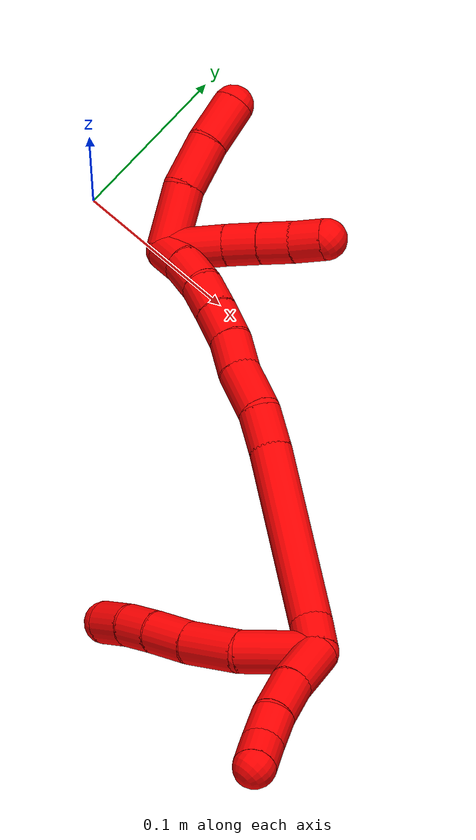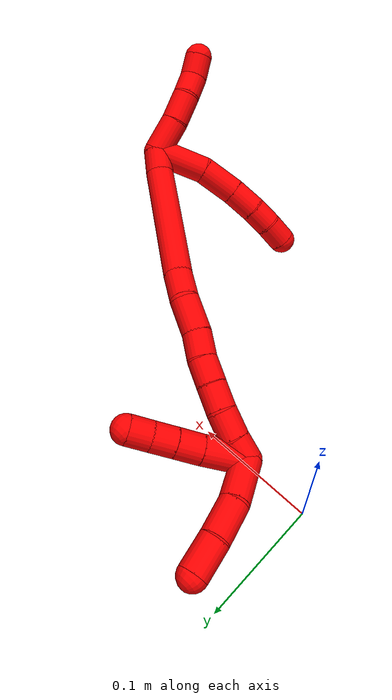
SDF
<sdf version="1.7">
 <world name="default">
  <model name="2">
   <static>0</static>
   <link name="2">
    <collision name="collision-cylinder-e_1_2_8">
     <pose>-0.01608 0.012185 0.011807 -0.801164 -0.758554 0.334425</pose>
     <geometry><cylinder><radius>0.0125</radius><length>0.046752</length></cylinder></geometry>
     <surface>
      <friction><ode><mu>1.16</mu><mu2>1.16</mu2><slip1>0</slip1><slip2>0</slip2></ode></friction>
      <contact><ode><kp>1e+06</kp><kd>1</kd><max_vel>0</max_vel><min_depth>0.001</min_depth></ode></contact>
     </surface>
    </collision>
    <visual name="visual-cylinder-e_1_2_8">
     <pose>-0.01608 0.012185 0.011807 -0.801164 -0.758554 0.334425</pose>
     <geometry><cylinder><radius>0.0125</radius><length>0.046752</length></cylinder></geometry>
     <material><ambient>1 0 0 1</ambient></material>
    </visual>
    <collision name="collision-cylinder-e_2_8_9">
     <pose>-0.046254 0.033023 0.028791 -1.03158 -0.949844 0.567336</pose>
     <geometry><cylinder><radius>0.0125</radius><length>0.03466</length></cylinder></geometry>
     <surface>
      <friction><ode><mu>1.16</mu><mu2>1.16</mu2><slip1>0</slip1><slip2>0</slip2></ode></friction>
      <contact><ode><kp>1e+06</kp><kd>1</kd><max_vel>0</max_vel><min_depth>0.001</min_depth></ode></contact>
     </surface>
    </collision>
    <visual name="visual-cylinder-e_2_8_9">
     <pose>-0.046254 0.033023 0.028791 -1.03158 -0.949844 0.567336</pose>
     <geometry><cylinder><radius>0.0125</radius><length>0.03466</length></cylinder></geometry>
     <material><ambient>1 0 0 1</ambient></material>
    </visual>
    <collision name="collision-cylinder-e_3_9_10">
     <pose>-0.071135 0.048456 0.036493 -1.21434 -0.979833 0.709601</pose>
     <geometry><cylinder><radius>0.0125</radius><length>0.025976</length></cylinder></geometry>
     <surface>
      <friction><ode><mu>1.16</mu><mu2>1.16</mu2><slip1>0</slip1><slip2>0</slip2></ode></friction>
      <contact><ode><kp>1e+06</kp><kd>1</kd><max_vel>0</max_vel><min_depth>0.001</min_depth></ode></contact>
     </surface>
    </collision>
    <visual name="visual-cylinder-e_3_9_10">
     <pose>-0.071135 0.048456 0.036493 -1.21434 -0.979833 0.709601</pose>
     <geometry><cylinder><radius>0.0125</radius><length>0.025976</length></cylinder></geometry>
     <material><ambient>1 0 0 1</ambient></material>
    </visual>
    <collision name="collision-cylinder-e_4_10_11">
     <pose>-0.091135 0.059765 0.040853 -1.18573 -1.08338 0.770295</pose>
     <geometry><cylinder><radius>0.0125</radius><length>0.020858</length></cylinder></geometry>
     <surface>
      <friction><ode><mu>1.16</mu><mu2>1.16</mu2><slip1>0</slip1><slip2>0</slip2></ode></friction>
      <contact><ode><kp>1e+06</kp><kd>1</kd><max_vel>0</max_vel><min_depth>0.001</min_depth></ode></contact>
     </surface>
    </collision>
    <visual name="visual-cylinder-e_4_10_11">
     <pose>-0.091135 0.059765 0.040853 -1.18573 -1.08338 0.770295</pose>
     <geometry><cylinder><radius>0.0125</radius><length>0.020858</length></cylinder></geometry>
     <material><ambient>1 0 0 1</ambient></material>
    </visual>
    <collision name="collision-cylinder-e_5_11_6">
     <pose>-0.110528 0.067506 0.044775 -0.995031 -1.21064 0.71894</pose>
     <geometry><cylinder><radius>0.0125</radius><length>0.021754</length></cylinder></geometry>
     <surface>
      <friction><ode><mu>1.16</mu><mu2>1.16</mu2><slip1>0</slip1><slip2>0</slip2></ode></friction>
      <contact><ode><kp>1e+06</kp><kd>1</kd><max_vel>0</max_vel><min_depth>0.001</min_depth></ode></contact>
     </surface>
    </collision>
    <visual name="visual-cylinder-e_5_11_6">
     <pose>-0.110528 0.067506 0.044775 -0.995031 -1.21064 0.71894</pose>
     <geometry><cylinder><radius>0.0125</radius><length>0.021754</length></cylinder></geometry>
     <material><ambient>1 0 0 1</ambient></material>
    </visual>
    <collision name="collision-cylinder-e_1_2_12">
     <pose>0.00761 0.001636 0.013966 -0.116608 0.496032 -0.02956</pose>
     <geometry><cylinder><radius>0.0125</radius><length>0.031977</length></cylinder></geometry>
     <surface>
      <friction><ode><mu>1.16</mu><mu2>1.16</mu2><slip1>0</slip1><slip2>0</slip2></ode></friction>
      <contact><ode><kp>1e+06</kp><kd>1</kd><max_vel>0</max_vel><min_depth>0.001</min_depth></ode></contact>
     </surface>
    </collision>
    <visual name="visual-cylinder-e_1_2_12">
     <pose>0.00761 0.001636 0.013966 -0.116608 0.496032 -0.02956</pose>
     <geometry><cylinder><radius>0.0125</radius><length>0.031977</length></cylinder></geometry>
     <material><ambient>1 0 0 1</ambient></material>
    </visual>
    <collision name="collision-cylinder-e_2_12_13">
     <pose>0.02225 0.003029 0.039528 0.020981 0.544915 0.005862</pose>
     <geometry><cylinder><radius>0.0125</radius><length>0.027127</length></cylinder></geometry>
     <surface>
      <friction><ode><mu>1.16</mu><mu2>1.16</mu2><slip1>0</slip1><slip2>0</slip2></ode></friction>
      <contact><ode><kp>1e+06</kp><kd>1</kd><max_vel>0</max_vel><min_depth>0.001</min_depth></ode></contact>
     </surface>
    </collision>
    <visual name="visual-cylinder-e_2_12_13">
     <pose>0.02225 0.003029 0.039528 0.020981 0.544915 0.005862</pose>
     <geometry><cylinder><radius>0.0125</radius><length>0.027127</length></cylinder></geometry>
     <material><ambient>1 0 0 1</ambient></material>
    </visual>
    <collision name="collision-cylinder-e_3_13_14">
     <pose>0.033782 0.000893 0.060162 0.206359 0.453641 0.047787</pose>
     <geometry><cylinder><radius>0.0125</radius><length>0.020545</length></cylinder></geometry>
     <surface>
      <friction><ode><mu>1.16</mu><mu2>1.16</mu2><slip1>0</slip1><slip2>0</slip2></ode></friction>
      <contact><ode><kp>1e+06</kp><kd>1</kd><max_vel>0</max_vel><min_depth>0.001</min_depth></ode></contact>
     </surface>
    </collision>
    <visual name="visual-cylinder-e_3_13_14">
     <pose>0.033782 0.000893 0.060162 0.206359 0.453641 0.047787</pose>
     <geometry><cylinder><radius>0.0125</radius><length>0.020545</length></cylinder></geometry>
     <material><ambient>1 0 0 1</ambient></material>
    </visual>
    <collision name="collision-cylinder-e_4_14_5">
     <pose>0.044939 -0.001758 0.07686 0.098756 0.71295 0.036801</pose>
     <geometry><cylinder><radius>0.0125</radius><length>0.020351</length></cylinder></geometry>
     <surface>
      <friction><ode><mu>1.16</mu><mu2>1.16</mu2><slip1>0</slip1><slip2>0</slip2></ode></friction>
      <contact><ode><kp>1e+06</kp><kd>1</kd><max_vel>0</max_vel><min_depth>0.001</min_depth></ode></contact>
     </surface>
    </collision>
    <visual name="visual-cylinder-e_4_14_5">
     <pose>0.044939 -0.001758 0.07686 0.098756 0.71295 0.036801</pose>
     <geometry><cylinder><radius>0.0125</radius><length>0.020351</length></cylinder></geometry>
     <material><ambient>1 0 0 1</ambient></material>
    </visual>
    <collision name="collision-cylinder-e_1_2_15">
     <pose>-0.007483 0.004776 -0.006533 -2.51036 -0.746247 1.75117</pose>
     <geometry><cylinder><radius>0.0125</radius><length>0.022043</length></cylinder></geometry>
     <surface>
      <friction><ode><mu>1.16</mu><mu2>1.16</mu2><slip1>0</slip1><slip2>0</slip2></ode></friction>
      <contact><ode><kp>1e+06</kp><kd>1</kd><max_vel>0</max_vel><min_depth>0.001</min_depth></ode></contact>
     </surface>
    </collision>
    <visual name="visual-cylinder-e_1_2_15">
     <pose>-0.007483 0.004776 -0.006533 -2.51036 -0.746247 1.75117</pose>
     <geometry><cylinder><radius>0.0125</radius><length>0.022043</length></cylinder></geometry>
     <material><ambient>1 0 0 1</ambient></material>
    </visual>
    <collision name="collision-cylinder-e_2_15_16">
     <pose>-0.040333 0.045964 -0.046482 -2.3133 -0.47423 1.00532</pose>
     <geometry><cylinder><radius>0.0125</radius><length>0.111104</length></cylinder></geometry>
     <surface>
      <friction><ode><mu>1.16</mu><mu2>1.16</mu2><slip1>0</slip1><slip2>0</slip2></ode></friction>
      <contact><ode><kp>1e+06</kp><kd>1</kd><max_vel>0</max_vel><min_depth>0.001</min_depth></ode></contact>
     </surface>
    </collision>
    <visual name="visual-cylinder-e_2_15_16">
     <pose>-0.040333 0.045964 -0.046482 -2.3133 -0.47423 1.00532</pose>
     <geometry><cylinder><radius>0.0125</radius><length>0.111104</length></cylinder></geometry>
     <material><ambient>1 0 0 1</ambient></material>
    </visual>
    <collision name="collision-cylinder-e_3_16_17">
     <pose>-0.070887 0.091432 -0.086939 -2.23178 -0.424596 0.830158</pose>
     <geometry><cylinder><radius>0.0125</radius><length>0.025179</length></cylinder></geometry>
     <surface>
      <friction><ode><mu>1.16</mu><mu2>1.16</mu2><slip1>0</slip1><slip2>0</slip2></ode></friction>
      <contact><ode><kp>1e+06</kp><kd>1</kd><max_vel>0</max_vel><min_depth>0.001</min_depth></ode></contact>
     </surface>
    </collision>
    <visual name="visual-cylinder-e_3_16_17">
     <pose>-0.070887 0.091432 -0.086939 -2.23178 -0.424596 0.830158</pose>
     <geometry><cylinder><radius>0.0125</radius><length>0.025179</length></cylinder></geometry>
     <material><ambient>1 0 0 1</ambient></material>
    </visual>
    <collision name="collision-cylinder-e_4_17_18">
     <pose>-0.085977 0.11028 -0.100618 -2.16644 -0.697042 1.20146</pose>
     <geometry><cylinder><radius>0.0125</radius><length>0.030855</length></cylinder></geometry>
     <surface>
      <friction><ode><mu>1.16</mu><mu2>1.16</mu2><slip1>0</slip1><slip2>0</slip2></ode></friction>
      <contact><ode><kp>1e+06</kp><kd>1</kd><max_vel>0</max_vel><min_depth>0.001</min_depth></ode></contact>
     </surface>
    </collision>
    <visual name="visual-cylinder-e_4_17_18">
     <pose>-0.085977 0.11028 -0.100618 -2.16644 -0.697042 1.20146</pose>
     <geometry><cylinder><radius>0.0125</radius><length>0.030855</length></cylinder></geometry>
     <material><ambient>1 0 0 1</ambient></material>
    </visual>
    <collision name="collision-cylinder-e_5_18_19">
     <pose>-0.10227 0.127033 -0.113779 -2.32381 -0.59008 1.22328</pose>
     <geometry><cylinder><radius>0.0125</radius><length>0.022965</length></cylinder></geometry>
     <surface>
      <friction><ode><mu>1.16</mu><mu2>1.16</mu2><slip1>0</slip1><slip2>0</slip2></ode></friction>
      <contact><ode><kp>1e+06</kp><kd>1</kd><max_vel>0</max_vel><min_depth>0.001</min_depth></ode></contact>
     </surface>
    </collision>
    <visual name="visual-cylinder-e_5_18_19">
     <pose>-0.10227 0.127033 -0.113779 -2.32381 -0.59008 1.22328</pose>
     <geometry><cylinder><radius>0.0125</radius><length>0.022965</length></cylinder></geometry>
     <material><ambient>1 0 0 1</ambient></material>
    </visual>
    <collision name="collision-cylinder-e_6_19_20">
     <pose>-0.115625 0.141172 -0.125105 -2.1604 -0.678756 1.16804</pose>
     <geometry><cylinder><radius>0.0125</radius><length>0.022192</length></cylinder></geometry>
     <surface>
      <friction><ode><mu>1.16</mu><mu2>1.16</mu2><slip1>0</slip1><slip2>0</slip2></ode></friction>
      <contact><ode><kp>1e+06</kp><kd>1</kd><max_vel>0</max_vel><min_depth>0.001</min_depth></ode></contact>
     </surface>
    </collision>
    <visual name="visual-cylinder-e_6_19_20">
     <pose>-0.115625 0.141172 -0.125105 -2.1604 -0.678756 1.16804</pose>
     <geometry><cylinder><radius>0.0125</radius><length>0.022192</length></cylinder></geometry>
     <material><ambient>1 0 0 1</ambient></material>
    </visual>
    <collision name="collision-cylinder-e_7_20_21">
     <pose>-0.130097 0.155172 -0.134447 -2.158 -0.741576 1.25556</pose>
     <geometry><cylinder><radius>0.0125</radius><length>0.022224</length></cylinder></geometry>
     <surface>
      <friction><ode><mu>1.16</mu><mu2>1.16</mu2><slip1>0</slip1><slip2>0</slip2></ode></friction>
      <contact><ode><kp>1e+06</kp><kd>1</kd><max_vel>0</max_vel><min_depth>0.001</min_depth></ode></contact>
     </surface>
    </collision>
    <visual name="visual-cylinder-e_7_20_21">
     <pose>-0.130097 0.155172 -0.134447 -2.158 -0.741576 1.25556</pose>
     <geometry><cylinder><radius>0.0125</radius><length>0.022224</length></cylinder></geometry>
     <material><ambient>1 0 0 1</ambient></material>
    </visual>
    <collision name="collision-cylinder-e_8_21_22">
     <pose>-0.146894 0.168238 -0.142374 -2.06778 -0.918083 1.38596</pose>
     <geometry><cylinder><radius>0.0125</radius><length>0.023391</length></cylinder></geometry>
     <surface>
      <friction><ode><mu>1.16</mu><mu2>1.16</mu2><slip1>0</slip1><slip2>0</slip2></ode></friction>
      <contact><ode><kp>1e+06</kp><kd>1</kd><max_vel>0</max_vel><min_depth>0.001</min_depth></ode></contact>
     </surface>
    </collision>
    <visual name="visual-cylinder-e_8_21_22">
     <pose>-0.146894 0.168238 -0.142374 -2.06778 -0.918083 1.38596</pose>
     <geometry><cylinder><radius>0.0125</radius><length>0.023391</length></cylinder></geometry>
     <material><ambient>1 0 0 1</ambient></material>
    </visual>
    <collision name="collision-cylinder-e_9_22_1">
     <pose>-0.16471 0.179486 -0.147425 -1.89186 -1.01672 1.31553</pose>
     <geometry><cylinder><radius>0.0125</radius><length>0.020048</length></cylinder></geometry>
     <surface>
      <friction><ode><mu>1.16</mu><mu2>1.16</mu2><slip1>0</slip1><slip2>0</slip2></ode></friction>
      <contact><ode><kp>1e+06</kp><kd>1</kd><max_vel>0</max_vel><min_depth>0.001</min_depth></ode></contact>
     </surface>
    </collision>
    <visual name="visual-cylinder-e_9_22_1">
     <pose>-0.16471 0.179486 -0.147425 -1.89186 -1.01672 1.31553</pose>
     <geometry><cylinder><radius>0.0125</radius><length>0.020048</length></cylinder></geometry>
     <material><ambient>1 0 0 1</ambient></material>
    </visual>
    <collision name="collision-cylinder-e_1_1_23">
     <pose>-0.161013 0.174884 -0.160148 2.42632 0.695281 1.53995</pose>
     <geometry><cylinder><radius>0.0125</radius><length>0.038153</length></cylinder></geometry>
     <surface>
      <friction><ode><mu>1.16</mu><mu2>1.16</mu2><slip1>0</slip1><slip2>0</slip2></ode></friction>
      <contact><ode><kp>1e+06</kp><kd>1</kd><max_vel>0</max_vel><min_depth>0.001</min_depth></ode></contact>
     </surface>
    </collision>
    <visual name="visual-cylinder-e_1_1_23">
     <pose>-0.161013 0.174884 -0.160148 2.42632 0.695281 1.53995</pose>
     <geometry><cylinder><radius>0.0125</radius><length>0.038153</length></cylinder></geometry>
     <material><ambient>1 0 0 1</ambient></material>
    </visual>
    <collision name="collision-cylinder-e_2_23_24">
     <pose>-0.141656 0.159761 -0.177036 2.38382 0.726833 1.52504</pose>
     <geometry><cylinder><radius>0.0125</radius><length>0.021481</length></cylinder></geometry>
     <surface>
      <friction><ode><mu>1.16</mu><mu2>1.16</mu2><slip1>0</slip1><slip2>0</slip2></ode></friction>
      <contact><ode><kp>1e+06</kp><kd>1</kd><max_vel>0</max_vel><min_depth>0.001</min_depth></ode></contact>
     </surface>
    </collision>
    <visual name="visual-cylinder-e_2_23_24">
     <pose>-0.141656 0.159761 -0.177036 2.38382 0.726833 1.52504</pose>
     <geometry><cylinder><radius>0.0125</radius><length>0.021481</length></cylinder></geometry>
     <material><ambient>1 0 0 1</ambient></material>
    </visual>
    <collision name="collision-cylinder-e_3_24_25">
     <pose>-0.127927 0.148902 -0.188384 2.37244 0.709232 1.48192</pose>
     <geometry><cylinder><radius>0.0125</radius><length>0.020243</length></cylinder></geometry>
     <surface>
      <friction><ode><mu>1.16</mu><mu2>1.16</mu2><slip1>0</slip1><slip2>0</slip2></ode></friction>
      <contact><ode><kp>1e+06</kp><kd>1</kd><max_vel>0</max_vel><min_depth>0.001</min_depth></ode></contact>
     </surface>
    </collision>
    <visual name="visual-cylinder-e_3_24_25">
     <pose>-0.127927 0.148902 -0.188384 2.37244 0.709232 1.48192</pose>
     <geometry><cylinder><radius>0.0125</radius><length>0.020243</length></cylinder></geometry>
     <material><ambient>1 0 0 1</ambient></material>
    </visual>
    <collision name="collision-cylinder-e_4_25_4">
     <pose>-0.114389 0.13882 -0.199426 2.43237 0.762088 1.64953</pose>
     <geometry><cylinder><radius>0.0125</radius><length>0.020123</length></cylinder></geometry>
     <surface>
      <friction><ode><mu>1.16</mu><mu2>1.16</mu2><slip1>0</slip1><slip2>0</slip2></ode></friction>
      <contact><ode><kp>1e+06</kp><kd>1</kd><max_vel>0</max_vel><min_depth>0.001</min_depth></ode></contact>
     </surface>
    </collision>
    <visual name="visual-cylinder-e_4_25_4">
     <pose>-0.114389 0.13882 -0.199426 2.43237 0.762088 1.64953</pose>
     <geometry><cylinder><radius>0.0125</radius><length>0.020123</length></cylinder></geometry>
     <material><ambient>1 0 0 1</ambient></material>
    </visual>
    <collision name="collision-cylinder-e_1_1_26">
     <pose>-0.17429 0.193471 -0.16621 -2.6585 -0.05456 0.220626</pose>
     <geometry><cylinder><radius>0.0125</radius><length>0.038724</length></cylinder></geometry>
     <surface>
      <friction><ode><mu>1.16</mu><mu2>1.16</mu2><slip1>0</slip1><slip2>0</slip2></ode></friction>
      <contact><ode><kp>1e+06</kp><kd>1</kd><max_vel>0</max_vel><min_depth>0.001</min_depth></ode></contact>
     </surface>
    </collision>
    <visual name="visual-cylinder-e_1_1_26">
     <pose>-0.17429 0.193471 -0.16621 -2.6585 -0.05456 0.220626</pose>
     <geometry><cylinder><radius>0.0125</radius><length>0.038724</length></cylinder></geometry>
     <material><ambient>1 0 0 1</ambient></material>
    </visual>
    <collision name="collision-cylinder-e_2_26_27">
     <pose>-0.176343 0.20643 -0.198578 -2.88634 -0.063241 0.483357</pose>
     <geometry><cylinder><radius>0.0125</radius><length>0.03158</length></cylinder></geometry>
     <surface>
      <friction><ode><mu>1.16</mu><mu2>1.16</mu2><slip1>0</slip1><slip2>0</slip2></ode></friction>
      <contact><ode><kp>1e+06</kp><kd>1</kd><max_vel>0</max_vel><min_depth>0.001</min_depth></ode></contact>
     </surface>
    </collision>
    <visual name="visual-cylinder-e_2_26_27">
     <pose>-0.176343 0.20643 -0.198578 -2.88634 -0.063241 0.483357</pose>
     <geometry><cylinder><radius>0.0125</radius><length>0.03158</length></cylinder></geometry>
     <material><ambient>1 0 0 1</ambient></material>
    </visual>
    <collision name="collision-cylinder-e_3_27_3">
     <pose>-0.179401 0.212326 -0.228405 -3.01084 -0.139151 1.63319</pose>
     <geometry><cylinder><radius>0.0125</radius><length>0.029696</length></cylinder></geometry>
     <surface>
      <friction><ode><mu>1.16</mu><mu2>1.16</mu2><slip1>0</slip1><slip2>0</slip2></ode></friction>
      <contact><ode><kp>1e+06</kp><kd>1</kd><max_vel>0</max_vel><min_depth>0.001</min_depth></ode></contact>
     </surface>
    </collision>
    <visual name="visual-cylinder-e_3_27_3">
     <pose>-0.179401 0.212326 -0.228405 -3.01084 -0.139151 1.63319</pose>
     <geometry><cylinder><radius>0.0125</radius><length>0.029696</length></cylinder></geometry>
     <material><ambient>1 0 0 1</ambient></material>
    </visual>
    <collision name="collision-sphere-3">
     <pose>-0.18146 0.214244 -0.242984 0 -0 0</pose>
     <geometry><sphere><radius>0.0125</radius></sphere></geometry>
     <surface>
      <friction><ode><mu>1.16</mu><mu2>1.16</mu2><slip1>0</slip1><slip2>0</slip2></ode></friction>
      <contact><ode><kp>1e+06</kp><kd>1</kd><max_vel>0</max_vel><min_depth>0.001</min_depth></ode></contact>
     </surface>
    </collision>
    <visual name="visual-sphere-3">
     <pose>-0.18146 0.214244 -0.242984 0 -0 0</pose>
     <geometry><sphere><radius>0.0125</radius></sphere></geometry>
     <material><ambient>1 0 0 1</ambient></material>
    </visual>
    <collision name="collision-sphere-27">
     <pose>-0.177341 0.210409 -0.213826 0 -0 0</pose>
     <geometry><sphere><radius>0.0125</radius></sphere></geometry>
     <surface>
      <friction><ode><mu>1.16</mu><mu2>1.16</mu2><slip1>0</slip1><slip2>0</slip2></ode></friction>
      <contact><ode><kp>1e+06</kp><kd>1</kd><max_vel>0</max_vel><min_depth>0.001</min_depth></ode></contact>
     </surface>
    </collision>
    <visual name="visual-sphere-27">
     <pose>-0.177341 0.210409 -0.213826 0 -0 0</pose>
     <geometry><sphere><radius>0.0125</radius></sphere></geometry>
     <material><ambient>1 0 0 1</ambient></material>
    </visual>
    <collision name="collision-sphere-26">
     <pose>-0.175345 0.202452 -0.183331 0 -0 0</pose>
     <geometry><sphere><radius>0.0125</radius></sphere></geometry>
     <surface>
      <friction><ode><mu>1.16</mu><mu2>1.16</mu2><slip1>0</slip1><slip2>0</slip2></ode></friction>
      <contact><ode><kp>1e+06</kp><kd>1</kd><max_vel>0</max_vel><min_depth>0.001</min_depth></ode></contact>
     </surface>
    </collision>
    <visual name="visual-sphere-26">
     <pose>-0.175345 0.202452 -0.183331 0 -0 0</pose>
     <geometry><sphere><radius>0.0125</radius></sphere></geometry>
     <material><ambient>1 0 0 1</ambient></material>
    </visual>
    <collision name="collision-sphere-4">
     <pose>-0.107442 0.13408 -0.20495 0 -0 0</pose>
     <geometry><sphere><radius>0.0125</radius></sphere></geometry>
     <surface>
      <friction><ode><mu>1.16</mu><mu2>1.16</mu2><slip1>0</slip1><slip2>0</slip2></ode></friction>
      <contact><ode><kp>1e+06</kp><kd>1</kd><max_vel>0</max_vel><min_depth>0.001</min_depth></ode></contact>
     </surface>
    </collision>
    <visual name="visual-sphere-4">
     <pose>-0.107442 0.13408 -0.20495 0 -0 0</pose>
     <geometry><sphere><radius>0.0125</radius></sphere></geometry>
     <material><ambient>1 0 0 1</ambient></material>
    </visual>
    <collision name="collision-sphere-25">
     <pose>-0.121335 0.14356 -0.193903 0 -0 0</pose>
     <geometry><sphere><radius>0.0125</radius></sphere></geometry>
     <surface>
      <friction><ode><mu>1.16</mu><mu2>1.16</mu2><slip1>0</slip1><slip2>0</slip2></ode></friction>
      <contact><ode><kp>1e+06</kp><kd>1</kd><max_vel>0</max_vel><min_depth>0.001</min_depth></ode></contact>
     </surface>
    </collision>
    <visual name="visual-sphere-25">
     <pose>-0.121335 0.14356 -0.193903 0 -0 0</pose>
     <geometry><sphere><radius>0.0125</radius></sphere></geometry>
     <material><ambient>1 0 0 1</ambient></material>
    </visual>
    <collision name="collision-sphere-24">
     <pose>-0.134519 0.154244 -0.182866 0 -0 0</pose>
     <geometry><sphere><radius>0.0125</radius></sphere></geometry>
     <surface>
      <friction><ode><mu>1.16</mu><mu2>1.16</mu2><slip1>0</slip1><slip2>0</slip2></ode></friction>
      <contact><ode><kp>1e+06</kp><kd>1</kd><max_vel>0</max_vel><min_depth>0.001</min_depth></ode></contact>
     </surface>
    </collision>
    <visual name="visual-sphere-24">
     <pose>-0.134519 0.154244 -0.182866 0 -0 0</pose>
     <geometry><sphere><radius>0.0125</radius></sphere></geometry>
     <material><ambient>1 0 0 1</ambient></material>
    </visual>
    <collision name="collision-sphere-23">
     <pose>-0.148793 0.165277 -0.171206 0 -0 0</pose>
     <geometry><sphere><radius>0.0125</radius></sphere></geometry>
     <surface>
      <friction><ode><mu>1.16</mu><mu2>1.16</mu2><slip1>0</slip1><slip2>0</slip2></ode></friction>
      <contact><ode><kp>1e+06</kp><kd>1</kd><max_vel>0</max_vel><min_depth>0.001</min_depth></ode></contact>
     </surface>
    </collision>
    <visual name="visual-sphere-23">
     <pose>-0.148793 0.165277 -0.171206 0 -0 0</pose>
     <geometry><sphere><radius>0.0125</radius></sphere></geometry>
     <material><ambient>1 0 0 1</ambient></material>
    </visual>
    <collision name="collision-sphere-1">
     <pose>-0.173234 0.184491 -0.149089 0 -0 0</pose>
     <geometry><sphere><radius>0.0125</radius></sphere></geometry>
     <surface>
      <friction><ode><mu>1.16</mu><mu2>1.16</mu2><slip1>0</slip1><slip2>0</slip2></ode></friction>
      <contact><ode><kp>1e+06</kp><kd>1</kd><max_vel>0</max_vel><min_depth>0.001</min_depth></ode></contact>
     </surface>
    </collision>
    <visual name="visual-sphere-1">
     <pose>-0.173234 0.184491 -0.149089 0 -0 0</pose>
     <geometry><sphere><radius>0.0125</radius></sphere></geometry>
     <material><ambient>1 0 0 1</ambient></material>
    </visual>
    <collision name="collision-sphere-22">
     <pose>-0.156185 0.174481 -0.14576 0 -0 0</pose>
     <geometry><sphere><radius>0.0125</radius></sphere></geometry>
     <surface>
      <friction><ode><mu>1.16</mu><mu2>1.16</mu2><slip1>0</slip1><slip2>0</slip2></ode></friction>
      <contact><ode><kp>1e+06</kp><kd>1</kd><max_vel>0</max_vel><min_depth>0.001</min_depth></ode></contact>
     </surface>
    </collision>
    <visual name="visual-sphere-22">
     <pose>-0.156185 0.174481 -0.14576 0 -0 0</pose>
     <geometry><sphere><radius>0.0125</radius></sphere></geometry>
     <material><ambient>1 0 0 1</ambient></material>
    </visual>
    <collision name="collision-sphere-21">
     <pose>-0.137603 0.161994 -0.138987 0 -0 0</pose>
     <geometry><sphere><radius>0.0125</radius></sphere></geometry>
     <surface>
      <friction><ode><mu>1.16</mu><mu2>1.16</mu2><slip1>0</slip1><slip2>0</slip2></ode></friction>
      <contact><ode><kp>1e+06</kp><kd>1</kd><max_vel>0</max_vel><min_depth>0.001</min_depth></ode></contact>
     </surface>
    </collision>
    <visual name="visual-sphere-21">
     <pose>-0.137603 0.161994 -0.138987 0 -0 0</pose>
     <geometry><sphere><radius>0.0125</radius></sphere></geometry>
     <material><ambient>1 0 0 1</ambient></material>
    </visual>
    <collision name="collision-sphere-6">
     <pose>-0.120707 0.070722 0.046862 0 -0 0</pose>
     <geometry><sphere><radius>0.0125</radius></sphere></geometry>
     <surface>
      <friction><ode><mu>1.16</mu><mu2>1.16</mu2><slip1>0</slip1><slip2>0</slip2></ode></friction>
      <contact><ode><kp>1e+06</kp><kd>1</kd><max_vel>0</max_vel><min_depth>0.001</min_depth></ode></contact>
     </surface>
    </collision>
    <visual name="visual-sphere-6">
     <pose>-0.120707 0.070722 0.046862 0 -0 0</pose>
     <geometry><sphere><radius>0.0125</radius></sphere></geometry>
     <material><ambient>1 0 0 1</ambient></material>
    </visual>
    <collision name="collision-sphere-11">
     <pose>-0.100349 0.064291 0.042688 0 -0 0</pose>
     <geometry><sphere><radius>0.0125</radius></sphere></geometry>
     <surface>
      <friction><ode><mu>1.16</mu><mu2>1.16</mu2><slip1>0</slip1><slip2>0</slip2></ode></friction>
      <contact><ode><kp>1e+06</kp><kd>1</kd><max_vel>0</max_vel><min_depth>0.001</min_depth></ode></contact>
     </surface>
    </collision>
    <visual name="visual-sphere-11">
     <pose>-0.100349 0.064291 0.042688 0 -0 0</pose>
     <geometry><sphere><radius>0.0125</radius></sphere></geometry>
     <material><ambient>1 0 0 1</ambient></material>
    </visual>
    <collision name="collision-sphere-10">
     <pose>-0.08192 0.055238 0.039018 0 -0 0</pose>
     <geometry><sphere><radius>0.0125</radius></sphere></geometry>
     <surface>
      <friction><ode><mu>1.16</mu><mu2>1.16</mu2><slip1>0</slip1><slip2>0</slip2></ode></friction>
      <contact><ode><kp>1e+06</kp><kd>1</kd><max_vel>0</max_vel><min_depth>0.001</min_depth></ode></contact>
     </surface>
    </collision>
    <visual name="visual-sphere-10">
     <pose>-0.08192 0.055238 0.039018 0 -0 0</pose>
     <geometry><sphere><radius>0.0125</radius></sphere></geometry>
     <material><ambient>1 0 0 1</ambient></material>
    </visual>
    <collision name="collision-sphere-9">
     <pose>-0.06035 0.041675 0.033968 0 -0 0</pose>
     <geometry><sphere><radius>0.0125</radius></sphere></geometry>
     <surface>
      <friction><ode><mu>1.16</mu><mu2>1.16</mu2><slip1>0</slip1><slip2>0</slip2></ode></friction>
      <contact><ode><kp>1e+06</kp><kd>1</kd><max_vel>0</max_vel><min_depth>0.001</min_depth></ode></contact>
     </surface>
    </collision>
    <visual name="visual-sphere-9">
     <pose>-0.06035 0.041675 0.033968 0 -0 0</pose>
     <geometry><sphere><radius>0.0125</radius></sphere></geometry>
     <material><ambient>1 0 0 1</ambient></material>
    </visual>
    <collision name="collision-sphere-2">
     <geometry><sphere><radius>0.0125</radius></sphere></geometry>
     <surface>
      <friction><ode><mu>1.16</mu><mu2>1.16</mu2><slip1>0</slip1><slip2>0</slip2></ode></friction>
      <contact><ode><kp>1e+06</kp><kd>1</kd><max_vel>0</max_vel><min_depth>0.001</min_depth></ode></contact>
     </surface>
    </collision>
    <visual name="visual-sphere-2">
     <geometry><sphere><radius>0.0125</radius></sphere></geometry>
     <material><ambient>1 0 0 1</ambient></material>
    </visual>
    <collision name="collision-sphere-19">
     <pose>-0.108659 0.133994 -0.120303 0 -0 0</pose>
     <geometry><sphere><radius>0.0125</radius></sphere></geometry>
     <surface>
      <friction><ode><mu>1.16</mu><mu2>1.16</mu2><slip1>0</slip1><slip2>0</slip2></ode></friction>
      <contact><ode><kp>1e+06</kp><kd>1</kd><max_vel>0</max_vel><min_depth>0.001</min_depth></ode></contact>
     </surface>
    </collision>
    <visual name="visual-sphere-19">
     <pose>-0.108659 0.133994 -0.120303 0 -0 0</pose>
     <geometry><sphere><radius>0.0125</radius></sphere></geometry>
     <material><ambient>1 0 0 1</ambient></material>
    </visual>
    <collision name="collision-sphere-8">
     <pose>-0.032159 0.02437 0.023614 0 -0 0</pose>
     <geometry><sphere><radius>0.0125</radius></sphere></geometry>
     <surface>
      <friction><ode><mu>1.16</mu><mu2>1.16</mu2><slip1>0</slip1><slip2>0</slip2></ode></friction>
      <contact><ode><kp>1e+06</kp><kd>1</kd><max_vel>0</max_vel><min_depth>0.001</min_depth></ode></contact>
     </surface>
    </collision>
    <visual name="visual-sphere-8">
     <pose>-0.032159 0.02437 0.023614 0 -0 0</pose>
     <geometry><sphere><radius>0.0125</radius></sphere></geometry>
     <material><ambient>1 0 0 1</ambient></material>
    </visual>
    <collision name="collision-sphere-12">
     <pose>0.015219 0.003272 0.027932 0 -0 0</pose>
     <geometry><sphere><radius>0.0125</radius></sphere></geometry>
     <surface>
      <friction><ode><mu>1.16</mu><mu2>1.16</mu2><slip1>0</slip1><slip2>0</slip2></ode></friction>
      <contact><ode><kp>1e+06</kp><kd>1</kd><max_vel>0</max_vel><min_depth>0.001</min_depth></ode></contact>
     </surface>
    </collision>
    <visual name="visual-sphere-12">
     <pose>0.015219 0.003272 0.027932 0 -0 0</pose>
     <geometry><sphere><radius>0.0125</radius></sphere></geometry>
     <material><ambient>1 0 0 1</ambient></material>
    </visual>
    <collision name="collision-sphere-13">
     <pose>0.02928 0.002785 0.051125 0 -0 0</pose>
     <geometry><sphere><radius>0.0125</radius></sphere></geometry>
     <surface>
      <friction><ode><mu>1.16</mu><mu2>1.16</mu2><slip1>0</slip1><slip2>0</slip2></ode></friction>
      <contact><ode><kp>1e+06</kp><kd>1</kd><max_vel>0</max_vel><min_depth>0.001</min_depth></ode></contact>
     </surface>
    </collision>
    <visual name="visual-sphere-13">
     <pose>0.02928 0.002785 0.051125 0 -0 0</pose>
     <geometry><sphere><radius>0.0125</radius></sphere></geometry>
     <material><ambient>1 0 0 1</ambient></material>
    </visual>
    <collision name="collision-sphere-14">
     <pose>0.038284 -0.000999 0.0692 0 -0 0</pose>
     <geometry><sphere><radius>0.0125</radius></sphere></geometry>
     <surface>
      <friction><ode><mu>1.16</mu><mu2>1.16</mu2><slip1>0</slip1><slip2>0</slip2></ode></friction>
      <contact><ode><kp>1e+06</kp><kd>1</kd><max_vel>0</max_vel><min_depth>0.001</min_depth></ode></contact>
     </surface>
    </collision>
    <visual name="visual-sphere-14">
     <pose>0.038284 -0.000999 0.0692 0 -0 0</pose>
     <geometry><sphere><radius>0.0125</radius></sphere></geometry>
     <material><ambient>1 0 0 1</ambient></material>
    </visual>
    <collision name="collision-sphere-5">
     <pose>0.051595 -0.002516 0.08452 0 -0 0</pose>
     <geometry><sphere><radius>0.0125</radius></sphere></geometry>
     <surface>
      <friction><ode><mu>1.16</mu><mu2>1.16</mu2><slip1>0</slip1><slip2>0</slip2></ode></friction>
      <contact><ode><kp>1e+06</kp><kd>1</kd><max_vel>0</max_vel><min_depth>0.001</min_depth></ode></contact>
     </surface>
    </collision>
    <visual name="visual-sphere-5">
     <pose>0.051595 -0.002516 0.08452 0 -0 0</pose>
     <geometry><sphere><radius>0.0125</radius></sphere></geometry>
     <material><ambient>1 0 0 1</ambient></material>
    </visual>
    <collision name="collision-sphere-15">
     <pose>-0.014965 0.009552 -0.013066 0 -0 0</pose>
     <geometry><sphere><radius>0.0125</radius></sphere></geometry>
     <surface>
      <friction><ode><mu>1.16</mu><mu2>1.16</mu2><slip1>0</slip1><slip2>0</slip2></ode></friction>
      <contact><ode><kp>1e+06</kp><kd>1</kd><max_vel>0</max_vel><min_depth>0.001</min_depth></ode></contact>
     </surface>
    </collision>
    <visual name="visual-sphere-15">
     <pose>-0.014965 0.009552 -0.013066 0 -0 0</pose>
     <geometry><sphere><radius>0.0125</radius></sphere></geometry>
     <material><ambient>1 0 0 1</ambient></material>
    </visual>
    <collision name="collision-sphere-16">
     <pose>-0.065701 0.082377 -0.079897 0 -0 0</pose>
     <geometry><sphere><radius>0.0125</radius></sphere></geometry>
     <surface>
      <friction><ode><mu>1.16</mu><mu2>1.16</mu2><slip1>0</slip1><slip2>0</slip2></ode></friction>
      <contact><ode><kp>1e+06</kp><kd>1</kd><max_vel>0</max_vel><min_depth>0.001</min_depth></ode></contact>
     </surface>
    </collision>
    <visual name="visual-sphere-16">
     <pose>-0.065701 0.082377 -0.079897 0 -0 0</pose>
     <geometry><sphere><radius>0.0125</radius></sphere></geometry>
     <material><ambient>1 0 0 1</ambient></material>
    </visual>
    <collision name="collision-sphere-17">
     <pose>-0.076073 0.100488 -0.093982 0 -0 0</pose>
     <geometry><sphere><radius>0.0125</radius></sphere></geometry>
     <surface>
      <friction><ode><mu>1.16</mu><mu2>1.16</mu2><slip1>0</slip1><slip2>0</slip2></ode></friction>
      <contact><ode><kp>1e+06</kp><kd>1</kd><max_vel>0</max_vel><min_depth>0.001</min_depth></ode></contact>
     </surface>
    </collision>
    <visual name="visual-sphere-17">
     <pose>-0.076073 0.100488 -0.093982 0 -0 0</pose>
     <geometry><sphere><radius>0.0125</radius></sphere></geometry>
     <material><ambient>1 0 0 1</ambient></material>
    </visual>
    <collision name="collision-sphere-18">
     <pose>-0.095881 0.120071 -0.107254 0 -0 0</pose>
     <geometry><sphere><radius>0.0125</radius></sphere></geometry>
     <surface>
      <friction><ode><mu>1.16</mu><mu2>1.16</mu2><slip1>0</slip1><slip2>0</slip2></ode></friction>
      <contact><ode><kp>1e+06</kp><kd>1</kd><max_vel>0</max_vel><min_depth>0.001</min_depth></ode></contact>
     </surface>
    </collision>
    <visual name="visual-sphere-18">
     <pose>-0.095881 0.120071 -0.107254 0 -0 0</pose>
     <geometry><sphere><radius>0.0125</radius></sphere></geometry>
     <material><ambient>1 0 0 1</ambient></material>
    </visual>
    <collision name="collision-sphere-20">
     <pose>-0.122592 0.148351 -0.129908 0 -0 0</pose>
     <geometry><sphere><radius>0.0125</radius></sphere></geometry>
     <surface>
      <friction><ode><mu>1.16</mu><mu2>1.16</mu2><slip1>0</slip1><slip2>0</slip2></ode></friction>
      <contact><ode><kp>1e+06</kp><kd>1</kd><max_vel>0</max_vel><min_depth>0.001</min_depth></ode></contact>
     </surface>
    </collision>
    <visual name="visual-sphere-20">
     <pose>-0.122592 0.148351 -0.129908 0 -0 0</pose>
     <geometry><sphere><radius>0.0125</radius></sphere></geometry>
     <material><ambient>1 0 0 1</ambient></material>
    </visual>
    <inertial>
     <pose>-0.081871 0.09331 -0.071802 0 -0 0</pose>
     <mass>0.75</mass>
     <inertia><ixx>0.000197</ixx><ixy>0</ixy><ixz>0</ixz><iyy>0.000158</iyy><iyz>0</iyz><izz>-4e-05</izz></inertia>
    </inertial>
   </link>
   <pose>0.301449 -0.143981 0.088191 1.51391 -1.09731 0.058117</pose>
  </model>
 </world>
</sdf>
